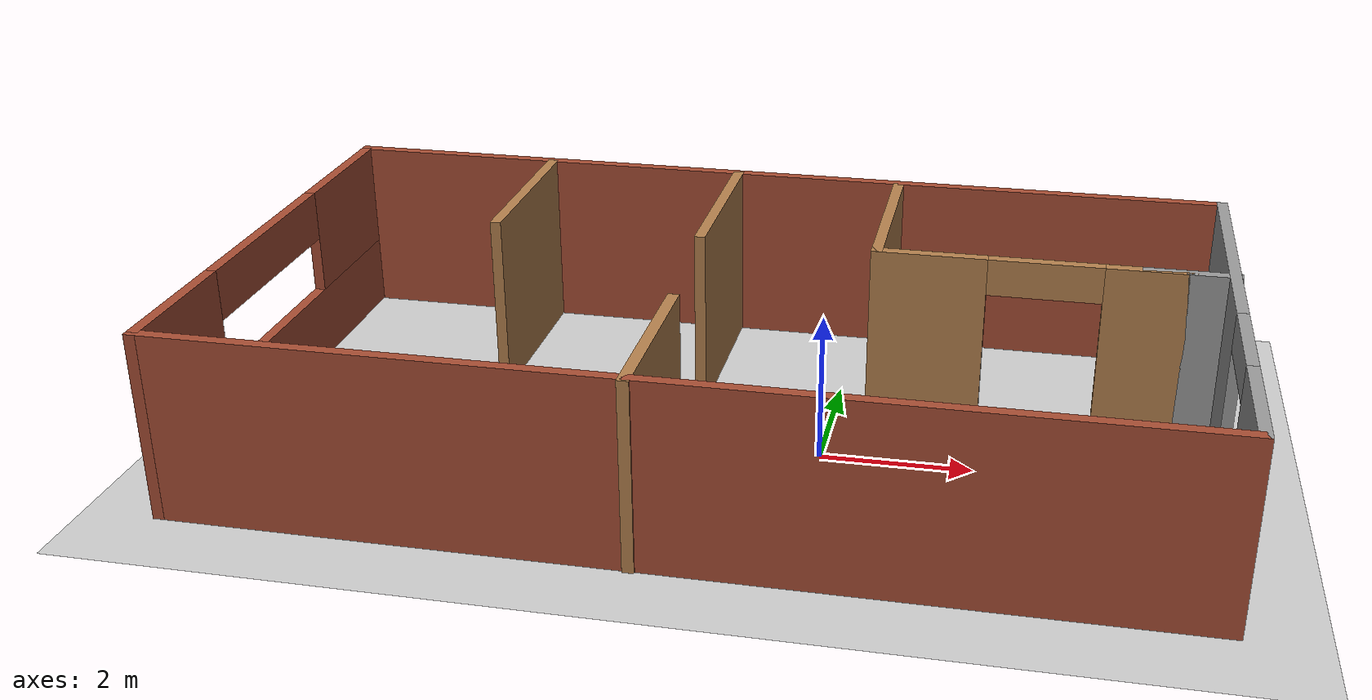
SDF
<sdf version="1.6">
 <world name="default">
  <light name="sun" type="directional">
   <pose>0 0 10 0 -0 0</pose>
   <diffuse>0.8 0.8 0.8 1</diffuse>
   <specular>0.2 0.2 0.2 1</specular>
   <attenuation>
    <range>1000</range>
    <constant>0.9</constant>
    <linear>0.01</linear>
    <quadratic>0.001</quadratic>
   </attenuation>
   <direction>-0.5 0.1 -0.9</direction>
  </light>
  <model name="ground_plane">
   <static>1</static>
   <link name="link">
    <collision name="collision">
     <geometry><plane><normal>0 0 1</normal><size>100 100</size></plane></geometry>
     <surface>
      <contact><collide_bitmask>65535</collide_bitmask></contact>
      <friction><ode><mu>100</mu><mu2>50</mu2></ode></friction>
     </surface>
    </collision>
    <visual name="visual">
     <cast_shadows>0</cast_shadows>
     <geometry><plane><normal>0 0 1</normal><size>100 100</size></plane></geometry>
     <material>
      <script><uri>file://media/materials/scripts/gazebo.material</uri><name>Gazebo/Grey</name></script>
     </material>
    </visual>
   </link>
  </model>
  <gravity>0 0 -9.8</gravity>
  <magnetic_field>6e-06 2.3e-05 -4.2e-05</magnetic_field>
  <atmosphere type="adiabatic"/>
  <physics name="default_physics" default="0" type="ode">
   <max_step_size>0.001</max_step_size>
   <real_time_factor>1</real_time_factor>
   <real_time_update_rate>1000</real_time_update_rate>
  </physics>
  <scene><ambient>0.4 0.4 0.4 1</ambient><background>0.7 0.7 0.7 1</background><shadows>1</shadows></scene>
  <spherical_coordinates>
   <surface_model>EARTH_WGS84</surface_model>
   <latitude_deg>0</latitude_deg>
   <longitude_deg>0</longitude_deg>
   <elevation>0</elevation>
   <heading_deg>0</heading_deg>
  </spherical_coordinates>
  <model name="MyBuilding2">
   <pose>-1.32235 0.380694 0 0 -0 0</pose>
   <link name="Wall_0">
    <collision name="Wall_0_Collision">
     <geometry><box><size>13 0.15 2.5</size></box></geometry>
     <pose>0 0 1.25 0 -0 0</pose>
    </collision>
    <visual name="Wall_0_Visual">
     <pose>0 0 1.25 0 -0 0</pose>
     <geometry><box><size>13 0.15 2.5</size></box></geometry>
     <material>
      <script><uri>file://media/materials/scripts/gazebo.material</uri><name>Gazebo/Bricks</name></script>
      <ambient>1 1 1 1</ambient>
     </material>
     <meta><layer>0</layer></meta>
    </visual>
    <pose>-0.011331 3.56443 0 0 -0 0</pose>
   </link>
   <link name="Wall_1">
    <pose>6.41367 0.014427 0 0 0 -1.5708</pose>
    <visual name="Wall_1_Visual_0">
     <pose>-1.63498 0 1.25 0 -0 0</pose>
     <geometry><box><size>3.98003 0.15 2.5</size></box></geometry>
     <material>
      <script><uri>file://media/materials/scripts/gazebo.material</uri><name>Gazebo/Grey</name></script>
      <ambient>1 1 1 1</ambient>
     </material>
     <meta><layer>0</layer></meta>
    </visual>
    <collision name="Wall_1_Collision_0">
     <geometry><box><size>3.98003 0.15 2.5</size></box></geometry>
     <pose>-1.63498 0 1.25 0 -0 0</pose>
    </collision>
    <visual name="Wall_1_Visual_1">
     <pose>2.74002 0 1.25 0 -0 0</pose>
     <geometry><box><size>1.76997 0.15 2.5</size></box></geometry>
     <material>
      <script><uri>file://media/materials/scripts/gazebo.material</uri><name>Gazebo/Grey</name></script>
      <ambient>1 1 1 1</ambient>
     </material>
     <meta><layer>0</layer></meta>
    </visual>
    <collision name="Wall_1_Collision_1">
     <geometry><box><size>1.76997 0.15 2.5</size></box></geometry>
     <pose>2.74002 0 1.25 0 -0 0</pose>
    </collision>
    <visual name="Wall_1_Visual_2">
     <pose>1.10503 0 2.25 0 -0 0</pose>
     <geometry><box><size>1.5 0.15 0.5</size></box></geometry>
     <material>
      <script><uri>file://media/materials/scripts/gazebo.material</uri><name>Gazebo/Grey</name></script>
      <ambient>1 1 1 1</ambient>
     </material>
     <meta><layer>0</layer></meta>
    </visual>
    <collision name="Wall_1_Collision_2">
     <geometry><box><size>1.5 0.15 0.5</size></box></geometry>
     <pose>1.10503 0 2.25 0 -0 0</pose>
    </collision>
   </link>
   <link name="Wall_10">
    <pose>4.13633 0.858026 0 0 -0 0</pose>
    <visual name="Wall_10_Visual_0">
     <pose>-1.60859 0 1.25 0 -0 0</pose>
     <geometry><box><size>1.53282 0.15 2.5</size></box></geometry>
     <material>
      <script><uri>file://media/materials/scripts/gazebo.material</uri><name>Gazebo/Wood</name></script>
      <ambient>1 1 1 1</ambient>
     </material>
     <meta><layer>0</layer></meta>
    </visual>
    <collision name="Wall_10_Collision_0">
     <geometry><box><size>1.53282 0.15 2.5</size></box></geometry>
     <pose>-1.60859 0 1.25 0 -0 0</pose>
    </collision>
    <visual name="Wall_10_Visual_1">
     <pose>1.51641 0 1.25 0 -0 0</pose>
     <geometry><box><size>1.71718 0.15 2.5</size></box></geometry>
     <material>
      <script><uri>file://media/materials/scripts/gazebo.material</uri><name>Gazebo/Wood</name></script>
      <ambient>1 1 1 1</ambient>
     </material>
     <meta><layer>0</layer></meta>
    </visual>
    <collision name="Wall_10_Collision_1">
     <geometry><box><size>1.71718 0.15 2.5</size></box></geometry>
     <pose>1.51641 0 1.25 0 -0 0</pose>
    </collision>
    <visual name="Wall_10_Visual_2">
     <pose>-0.092184 0 2.25 0 -0 0</pose>
     <geometry><box><size>1.5 0.15 0.5</size></box></geometry>
     <material>
      <script><uri>file://media/materials/scripts/gazebo.material</uri><name>Gazebo/Wood</name></script>
      <ambient>1 1 1 1</ambient>
     </material>
     <meta><layer>0</layer></meta>
    </visual>
    <collision name="Wall_10_Collision_2">
     <geometry><box><size>1.5 0.15 0.5</size></box></geometry>
     <pose>-0.092184 0 2.25 0 -0 0</pose>
    </collision>
   </link>
   <link name="Wall_11">
    <collision name="Wall_11_Collision">
     <geometry><box><size>1.25 0.15 2.5</size></box></geometry>
     <pose>0 0 1.25 0 -0 0</pose>
    </collision>
    <visual name="Wall_11_Visual">
     <pose>0 0 1.25 0 -0 0</pose>
     <geometry><box><size>1.25 0.15 2.5</size></box></geometry>
     <material>
      <script><uri>file://media/materials/scripts/gazebo.material</uri><name>Gazebo/Grey</name></script>
      <ambient>1 1 1 1</ambient>
     </material>
     <meta><layer>0</layer></meta>
    </visual>
    <pose>5.88633 0.858026 0 0 -0 3.14159</pose>
   </link>
   <link name="Wall_13">
    <collision name="Wall_13_Collision">
     <geometry><box><size>2.5 0.15 2.5</size></box></geometry>
     <pose>0 0 1.25 0 -0 0</pose>
    </collision>
    <visual name="Wall_13_Visual">
     <pose>0 0 1.25 0 -0 0</pose>
     <geometry><box><size>2.5 0.15 2.5</size></box></geometry>
     <material>
      <script><uri>file://media/materials/scripts/gazebo.material</uri><name>Gazebo/Wood</name></script>
      <ambient>1 1 1 1</ambient>
     </material>
     <meta><layer>0</layer></meta>
    </visual>
    <pose>-0.451286 -2.38943 0 0 -0 1.5708</pose>
   </link>
   <link name="Wall_2">
    <collision name="Wall_2_Collision">
     <geometry><box><size>13 0.15 2.5</size></box></geometry>
     <pose>0 0 1.25 0 -0 0</pose>
    </collision>
    <visual name="Wall_2_Visual">
     <pose>0 0 1.25 0 -0 0</pose>
     <geometry><box><size>13 0.15 2.5</size></box></geometry>
     <material>
      <script><uri>file://media/materials/scripts/gazebo.material</uri><name>Gazebo/Bricks</name></script>
      <ambient>1 1 1 1</ambient>
     </material>
     <meta><layer>0</layer></meta>
    </visual>
    <pose>-0.011331 -3.53557 0 0 -0 3.14159</pose>
   </link>
   <link name="Wall_3">
    <pose>-6.43633 0.014427 0 0 -0 1.5708</pose>
    <visual name="Wall_3_Visual_0">
     <pose>-2.60961 0 1.25 0 -0 0</pose>
     <geometry><box><size>2.03077 0.15 2.5</size></box></geometry>
     <material>
      <script><uri>file://media/materials/scripts/gazebo.material</uri><name>Gazebo/Bricks</name></script>
      <ambient>1 1 1 1</ambient>
     </material>
     <meta><layer>0</layer></meta>
    </visual>
    <collision name="Wall_3_Collision_0">
     <geometry><box><size>2.03077 0.15 2.5</size></box></geometry>
     <pose>-2.60961 0 1.25 0 -0 0</pose>
    </collision>
    <visual name="Wall_3_Visual_1">
     <pose>1.01539 0 0.5 0 -0 0</pose>
     <geometry><box><size>5.21923 0.15 1</size></box></geometry>
     <material>
      <script><uri>file://media/materials/scripts/gazebo.material</uri><name>Gazebo/Bricks</name></script>
      <ambient>1 1 1 1</ambient>
     </material>
     <meta><layer>0</layer></meta>
    </visual>
    <collision name="Wall_3_Collision_1">
     <geometry><box><size>5.21923 0.15 1</size></box></geometry>
     <pose>1.01539 0 0.5 0 -0 0</pose>
    </collision>
    <visual name="Wall_3_Visual_2">
     <pose>2.51539 0 1.75 0 -0 0</pose>
     <geometry><box><size>2.21923 0.15 1.5</size></box></geometry>
     <material>
      <script><uri>file://media/materials/scripts/gazebo.material</uri><name>Gazebo/Bricks</name></script>
      <ambient>1 1 1 1</ambient>
     </material>
     <meta><layer>0</layer></meta>
    </visual>
    <collision name="Wall_3_Collision_2">
     <geometry><box><size>2.21923 0.15 1.5</size></box></geometry>
     <pose>2.51539 0 1.75 0 -0 0</pose>
    </collision>
    <visual name="Wall_3_Visual_3">
     <pose>-0.094227 0 2.15 0 -0 0</pose>
     <geometry><box><size>3 0.15 0.7</size></box></geometry>
     <material>
      <script><uri>file://media/materials/scripts/gazebo.material</uri><name>Gazebo/Bricks</name></script>
      <ambient>1 1 1 1</ambient>
     </material>
     <meta><layer>0</layer></meta>
    </visual>
    <collision name="Wall_3_Collision_3">
     <geometry><box><size>3 0.15 0.7</size></box></geometry>
     <pose>-0.094227 0 2.15 0 -0 0</pose>
    </collision>
   </link>
   <link name="Wall_5">
    <collision name="Wall_5_Collision">
     <geometry><box><size>2.75 0.15 2.5</size></box></geometry>
     <pose>0 0 1.25 0 -0 0</pose>
    </collision>
    <visual name="Wall_5_Visual">
     <pose>0 0 1.25 0 -0 0</pose>
     <geometry><box><size>2.75 0.15 2.5</size></box></geometry>
     <material>
      <script><uri>file://media/materials/scripts/gazebo.material</uri><name>Gazebo/Wood</name></script>
      <ambient>1 1 1 1</ambient>
     </material>
     <meta><layer>0</layer></meta>
    </visual>
    <pose>-3.43051 2.18463 0 0 0 -1.5708</pose>
   </link>
   <link name="Wall_7">
    <collision name="Wall_7_Collision">
     <geometry><box><size>2.75 0.15 2.5</size></box></geometry>
     <pose>0 0 1.25 0 -0 0</pose>
    </collision>
    <visual name="Wall_7_Visual">
     <pose>0 0 1.25 0 -0 0</pose>
     <geometry><box><size>2.75 0.15 2.5</size></box></geometry>
     <material>
      <script><uri>file://media/materials/scripts/gazebo.material</uri><name>Gazebo/Wood</name></script>
      <ambient>1 1 1 1</ambient>
     </material>
     <meta><layer>0</layer></meta>
    </visual>
    <pose>-0.557687 2.21123 0 0 0 -1.5708</pose>
   </link>
   <link name="Wall_9">
    <collision name="Wall_9_Collision">
     <geometry><box><size>2.75 0.15 2.5</size></box></geometry>
     <pose>0 0 1.25 0 -0 0</pose>
    </collision>
    <visual name="Wall_9_Visual">
     <pose>0 0 1.25 0 -0 0</pose>
     <geometry><box><size>2.75 0.15 2.5</size></box></geometry>
     <material>
      <script><uri>file://media/materials/scripts/gazebo.material</uri><name>Gazebo/Wood</name></script>
      <ambient>1 1 1 1</ambient>
     </material>
     <meta><layer>0</layer></meta>
    </visual>
    <pose>1.83633 2.15803 0 0 0 -1.5708</pose>
   </link>
   <static>1</static>
  </model>
 </world>
</sdf>
